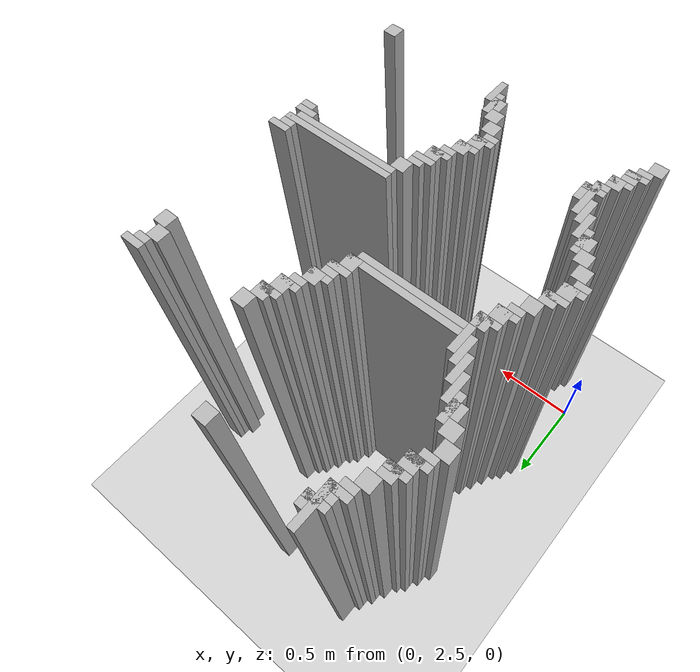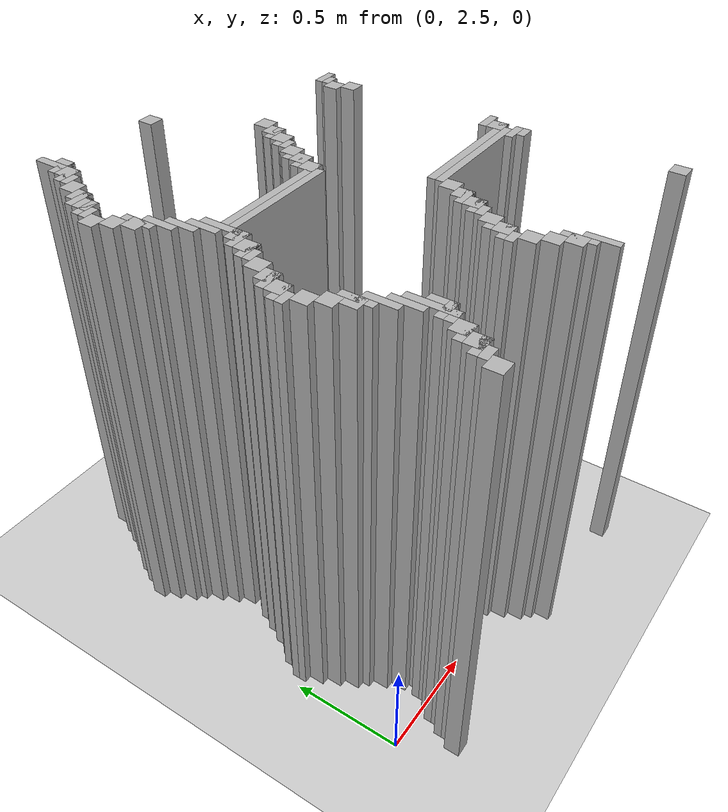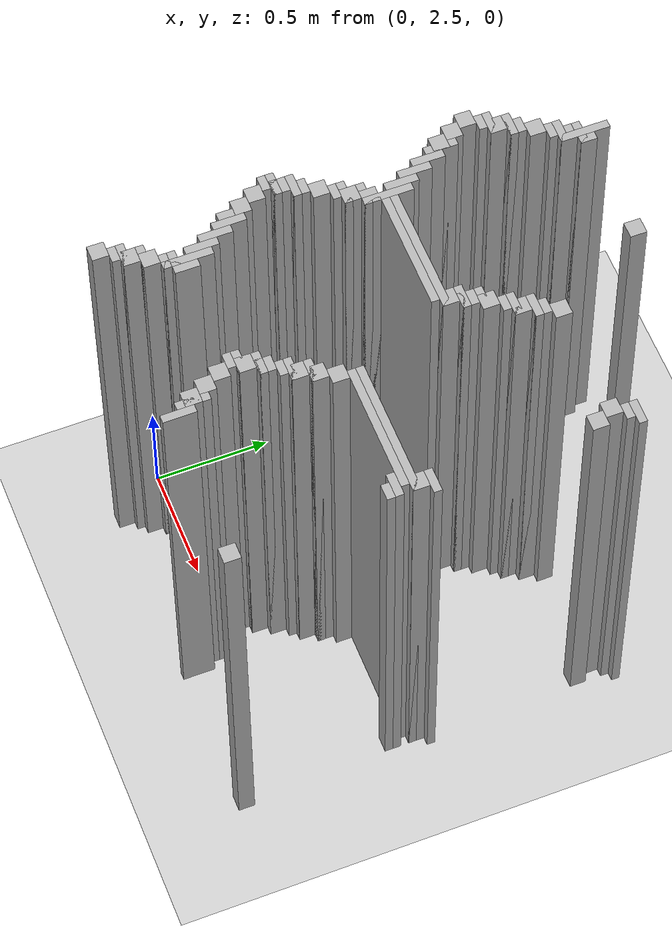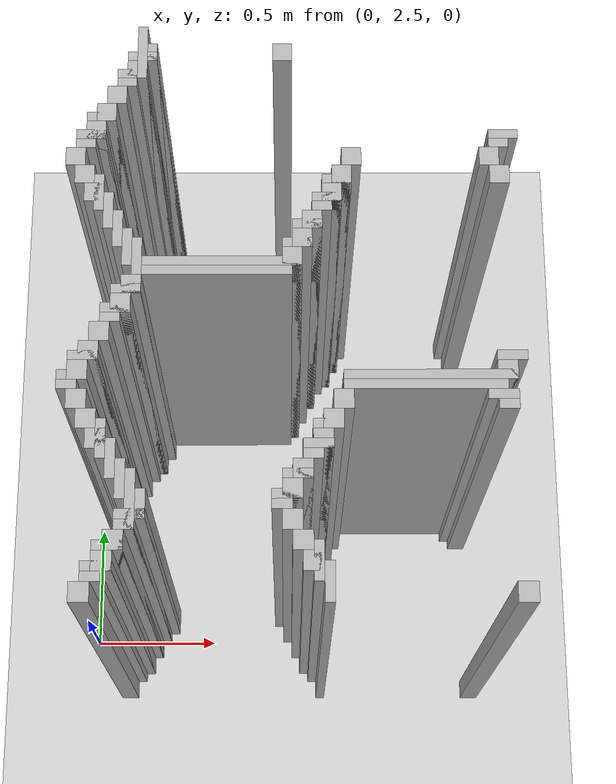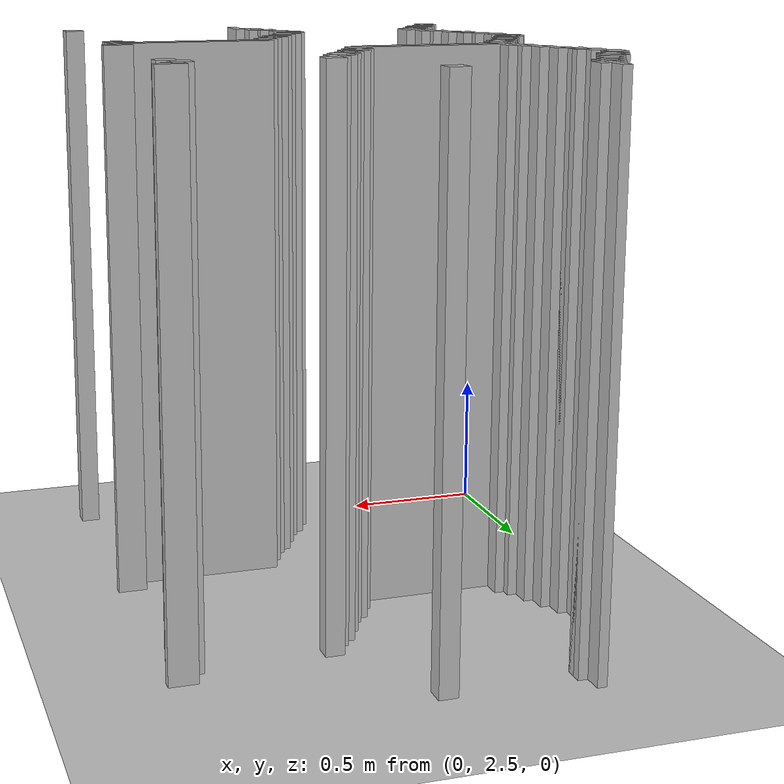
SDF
<sdf version="1.6">
 <world name="slam_world">
  <model name="ground_plane">
   <static>true</static>
   <link name="link">
    <collision name="collision">
     <geometry><plane><normal>0 0 1</normal><size>100 100</size></plane></geometry>
    </collision>
    <visual name="visual">
     <geometry><plane><normal>0 0 1</normal><size>100 100</size></plane></geometry>
     <material>
      <ambient>0.8 0.8 0.8 1</ambient>
      <diffuse>0.8 0.8 0.8 1</diffuse>
      <specular>0.8 0.8 0.8 1</specular>
     </material>
    </visual>
   </link>
  </model>
  <model name="wall_4394">
   <static>true</static>
   <pose>0.29582366589327147 4.280742459396752 1.0 0 0 0</pose>
   <link name="link">
    <collision name="collision">
     <geometry><box><size>0.03480278422273782 0.2088167053364269 2.0</size></box></geometry>
    </collision>
    <visual name="visual">
     <geometry><box><size>0.03480278422273782 0.2088167053364269 2.0</size></box></geometry>
     <material><ambient>0.5 0.5 0.5 1</ambient><diffuse>0.7 0.7 0.7 1</diffuse></material>
    </visual>
   </link>
  </model>
  <model name="wall_4413">
   <static>true</static>
   <pose>0.3306264501160093 4.280742459396752 1.0 0 0 0</pose>
   <link name="link">
    <collision name="collision">
     <geometry><box><size>0.03480278422273782 0.06960556844547564 2.0</size></box></geometry>
    </collision>
    <visual name="visual">
     <geometry><box><size>0.03480278422273782 0.06960556844547564 2.0</size></box></geometry>
     <material><ambient>0.5 0.5 0.5 1</ambient><diffuse>0.7 0.7 0.7 1</diffuse></material>
    </visual>
   </link>
  </model>
  <model name="wall_4414">
   <static>true</static>
   <pose>0.8004640371229698 4.280742459396752 1.0 0 0 0</pose>
   <link name="link">
    <collision name="collision">
     <geometry><box><size>0.06960556844547564 0.06960556844547564 2.0</size></box></geometry>
    </collision>
    <visual name="visual">
     <geometry><box><size>0.06960556844547564 0.06960556844547564 2.0</size></box></geometry>
     <material><ambient>0.5 0.5 0.5 1</ambient><diffuse>0.7 0.7 0.7 1</diffuse></material>
    </visual>
   </link>
  </model>
  <model name="wall_4428">
   <static>true</static>
   <pose>0.29582366589327147 4.263341067285383 1.0 0 0 0</pose>
   <link name="link">
    <collision name="collision">
     <geometry><box><size>0.10440835266821345 0.03480278422273782 2.0</size></box></geometry>
    </collision>
    <visual name="visual">
     <geometry><box><size>0.10440835266821345 0.03480278422273782 2.0</size></box></geometry>
     <material><ambient>0.5 0.5 0.5 1</ambient><diffuse>0.7 0.7 0.7 1</diffuse></material>
    </visual>
   </link>
  </model>
  <model name="wall_4441">
   <static>true</static>
   <pose>0.27842227378190254 4.211136890951276 1.0 0 0 0</pose>
   <link name="link">
    <collision name="collision">
     <geometry><box><size>0.06960556844547564 0.06960556844547564 2.0</size></box></geometry>
    </collision>
    <visual name="visual">
     <geometry><box><size>0.06960556844547564 0.06960556844547564 2.0</size></box></geometry>
     <material><ambient>0.5 0.5 0.5 1</ambient><diffuse>0.7 0.7 0.7 1</diffuse></material>
    </visual>
   </link>
  </model>
  <model name="wall_4456">
   <static>true</static>
   <pose>0.2610208816705336 4.193735498839907 1.0 0 0 0</pose>
   <link name="link">
    <collision name="collision">
     <geometry><box><size>0.10440835266821345 0.03480278422273782 2.0</size></box></geometry>
    </collision>
    <visual name="visual">
     <geometry><box><size>0.10440835266821345 0.03480278422273782 2.0</size></box></geometry>
     <material><ambient>0.5 0.5 0.5 1</ambient><diffuse>0.7 0.7 0.7 1</diffuse></material>
    </visual>
   </link>
  </model>
  <model name="wall_4471">
   <static>true</static>
   <pose>0.24361948955916474 4.158932714617169 1.0 0 0 0</pose>
   <link name="link">
    <collision name="collision">
     <geometry><box><size>0.06960556844547564 0.03480278422273782 2.0</size></box></geometry>
    </collision>
    <visual name="visual">
     <geometry><box><size>0.06960556844547564 0.03480278422273782 2.0</size></box></geometry>
     <material><ambient>0.5 0.5 0.5 1</ambient><diffuse>0.7 0.7 0.7 1</diffuse></material>
    </visual>
   </link>
  </model>
  <model name="wall_4481">
   <static>true</static>
   <pose>0.2088167053364269 4.106728538283062 1.0 0 0 0</pose>
   <link name="link">
    <collision name="collision">
     <geometry><box><size>0.06960556844547564 0.06960556844547564 2.0</size></box></geometry>
    </collision>
    <visual name="visual">
     <geometry><box><size>0.06960556844547564 0.06960556844547564 2.0</size></box></geometry>
     <material><ambient>0.5 0.5 0.5 1</ambient><diffuse>0.7 0.7 0.7 1</diffuse></material>
    </visual>
   </link>
  </model>
  <model name="wall_4496">
   <static>true</static>
   <pose>0.17401392111368907 4.037122969837587 1.0 0 0 0</pose>
   <link name="link">
    <collision name="collision">
     <geometry><box><size>0.06960556844547564 0.06960556844547564 2.0</size></box></geometry>
    </collision>
    <visual name="visual">
     <geometry><box><size>0.06960556844547564 0.06960556844547564 2.0</size></box></geometry>
     <material><ambient>0.5 0.5 0.5 1</ambient><diffuse>0.7 0.7 0.7 1</diffuse></material>
    </visual>
   </link>
  </model>
  <model name="wall_4511">
   <static>true</static>
   <pose>0.15661252900232017 4.019721577726218 1.0 0 0 0</pose>
   <link name="link">
    <collision name="collision">
     <geometry><box><size>0.10440835266821345 0.03480278422273782 2.0</size></box></geometry>
    </collision>
    <visual name="visual">
     <geometry><box><size>0.10440835266821345 0.03480278422273782 2.0</size></box></geometry>
     <material><ambient>0.5 0.5 0.5 1</ambient><diffuse>0.7 0.7 0.7 1</diffuse></material>
    </visual>
   </link>
  </model>
  <model name="wall_4526">
   <static>true</static>
   <pose>0.13921113689095127 3.967517401392111 1.0 0 0 0</pose>
   <link name="link">
    <collision name="collision">
     <geometry><box><size>0.06960556844547564 0.06960556844547564 2.0</size></box></geometry>
    </collision>
    <visual name="visual">
     <geometry><box><size>0.06960556844547564 0.06960556844547564 2.0</size></box></geometry>
     <material><ambient>0.5 0.5 0.5 1</ambient><diffuse>0.7 0.7 0.7 1</diffuse></material>
    </visual>
   </link>
  </model>
  <model name="wall_4534">
   <static>true</static>
   <pose>0.12180974477958237 3.9501160092807424 1.0 0 0 0</pose>
   <link name="link">
    <collision name="collision">
     <geometry><box><size>0.10440835266821345 0.03480278422273782 2.0</size></box></geometry>
    </collision>
    <visual name="visual">
     <geometry><box><size>0.10440835266821345 0.03480278422273782 2.0</size></box></geometry>
     <material><ambient>0.5 0.5 0.5 1</ambient><diffuse>0.7 0.7 0.7 1</diffuse></material>
    </visual>
   </link>
  </model>
  <model name="wall_4535">
   <static>true</static>
   <pose>1.5835266821345706 3.9501160092807424 1.0 0 0 0</pose>
   <link name="link">
    <collision name="collision">
     <geometry><box><size>0.10440835266821345 0.03480278422273782 2.0</size></box></geometry>
    </collision>
    <visual name="visual">
     <geometry><box><size>0.10440835266821345 0.03480278422273782 2.0</size></box></geometry>
     <material><ambient>0.5 0.5 0.5 1</ambient><diffuse>0.7 0.7 0.7 1</diffuse></material>
    </visual>
   </link>
  </model>
  <model name="wall_4549">
   <static>true</static>
   <pose>0.10440835266821345 3.9153132250580045 1.0 0 0 0</pose>
   <link name="link">
    <collision name="collision">
     <geometry><box><size>0.06960556844547564 0.03480278422273782 2.0</size></box></geometry>
    </collision>
    <visual name="visual">
     <geometry><box><size>0.06960556844547564 0.03480278422273782 2.0</size></box></geometry>
     <material><ambient>0.5 0.5 0.5 1</ambient><diffuse>0.7 0.7 0.7 1</diffuse></material>
    </visual>
   </link>
  </model>
  <model name="wall_4550">
   <static>true</static>
   <pose>1.5661252900232019 3.9153132250580045 1.0 0 0 0</pose>
   <link name="link">
    <collision name="collision">
     <geometry><box><size>0.06960556844547564 0.03480278422273782 2.0</size></box></geometry>
    </collision>
    <visual name="visual">
     <geometry><box><size>0.06960556844547564 0.03480278422273782 2.0</size></box></geometry>
     <material><ambient>0.5 0.5 0.5 1</ambient><diffuse>0.7 0.7 0.7 1</diffuse></material>
    </visual>
   </link>
  </model>
  <model name="wall_4557">
   <static>true</static>
   <pose>0.06960556844547564 3.863109048723898 1.0 0 0 0</pose>
   <link name="link">
    <collision name="collision">
     <geometry><box><size>0.06960556844547564 0.06960556844547564 2.0</size></box></geometry>
    </collision>
    <visual name="visual">
     <geometry><box><size>0.06960556844547564 0.06960556844547564 2.0</size></box></geometry>
     <material><ambient>0.5 0.5 0.5 1</ambient><diffuse>0.7 0.7 0.7 1</diffuse></material>
    </visual>
   </link>
  </model>
  <model name="wall_4558">
   <static>true</static>
   <pose>1.0440835266821344 3.863109048723898 1.0 0 0 0</pose>
   <link name="link">
    <collision name="collision">
     <geometry><box><size>0.06960556844547564 0.06960556844547564 2.0</size></box></geometry>
    </collision>
    <visual name="visual">
     <geometry><box><size>0.06960556844547564 0.06960556844547564 2.0</size></box></geometry>
     <material><ambient>0.5 0.5 0.5 1</ambient><diffuse>0.7 0.7 0.7 1</diffuse></material>
    </visual>
   </link>
  </model>
  <model name="wall_4559">
   <static>true</static>
   <pose>1.531322505800464 3.863109048723898 1.0 0 0 0</pose>
   <link name="link">
    <collision name="collision">
     <geometry><box><size>0.06960556844547564 0.06960556844547564 2.0</size></box></geometry>
    </collision>
    <visual name="visual">
     <geometry><box><size>0.06960556844547564 0.06960556844547564 2.0</size></box></geometry>
     <material><ambient>0.5 0.5 0.5 1</ambient><diffuse>0.7 0.7 0.7 1</diffuse></material>
    </visual>
   </link>
  </model>
  <model name="wall_4571">
   <static>true</static>
   <pose>0.10440835266821345 3.793503480278422 1.0 0 0 0</pose>
   <link name="link">
    <collision name="collision">
     <geometry><box><size>0.06960556844547564 0.06960556844547564 2.0</size></box></geometry>
    </collision>
    <visual name="visual">
     <geometry><box><size>0.06960556844547564 0.06960556844547564 2.0</size></box></geometry>
     <material><ambient>0.5 0.5 0.5 1</ambient><diffuse>0.7 0.7 0.7 1</diffuse></material>
    </visual>
   </link>
  </model>
  <model name="wall_4572">
   <static>true</static>
   <pose>1.0092807424593968 3.793503480278422 1.0 0 0 0</pose>
   <link name="link">
    <collision name="collision">
     <geometry><box><size>0.06960556844547564 0.06960556844547564 2.0</size></box></geometry>
    </collision>
    <visual name="visual">
     <geometry><box><size>0.06960556844547564 0.06960556844547564 2.0</size></box></geometry>
     <material><ambient>0.5 0.5 0.5 1</ambient><diffuse>0.7 0.7 0.7 1</diffuse></material>
    </visual>
   </link>
  </model>
  <model name="wall_4573">
   <static>true</static>
   <pose>1.5661252900232019 3.793503480278422 1.0 0 0 0</pose>
   <link name="link">
    <collision name="collision">
     <geometry><box><size>0.06960556844547564 0.06960556844547564 2.0</size></box></geometry>
    </collision>
    <visual name="visual">
     <geometry><box><size>0.06960556844547564 0.06960556844547564 2.0</size></box></geometry>
     <material><ambient>0.5 0.5 0.5 1</ambient><diffuse>0.7 0.7 0.7 1</diffuse></material>
    </visual>
   </link>
  </model>
  <model name="wall_4585">
   <static>true</static>
   <pose>0.15661252900232017 3.7238979118329465 1.0 0 0 0</pose>
   <link name="link">
    <collision name="collision">
     <geometry><box><size>0.03480278422273782 0.13921113689095127 2.0</size></box></geometry>
    </collision>
    <visual name="visual">
     <geometry><box><size>0.03480278422273782 0.13921113689095127 2.0</size></box></geometry>
     <material><ambient>0.5 0.5 0.5 1</ambient><diffuse>0.7 0.7 0.7 1</diffuse></material>
    </visual>
   </link>
  </model>
  <model name="wall_4586">
   <static>true</static>
   <pose>0.9918793503480278 3.776102088167053 1.0 0 0 0</pose>
   <link name="link">
    <collision name="collision">
     <geometry><box><size>0.10440835266821345 0.03480278422273782 2.0</size></box></geometry>
    </collision>
    <visual name="visual">
     <geometry><box><size>0.10440835266821345 0.03480278422273782 2.0</size></box></geometry>
     <material><ambient>0.5 0.5 0.5 1</ambient><diffuse>0.7 0.7 0.7 1</diffuse></material>
    </visual>
   </link>
  </model>
  <model name="wall_4599">
   <static>true</static>
   <pose>0.13921113689095127 3.7238979118329465 1.0 0 0 0</pose>
   <link name="link">
    <collision name="collision">
     <geometry><box><size>0.06960556844547564 0.06960556844547564 2.0</size></box></geometry>
    </collision>
    <visual name="visual">
     <geometry><box><size>0.06960556844547564 0.06960556844547564 2.0</size></box></geometry>
     <material><ambient>0.5 0.5 0.5 1</ambient><diffuse>0.7 0.7 0.7 1</diffuse></material>
    </visual>
   </link>
  </model>
  <model name="wall_4600">
   <static>true</static>
   <pose>0.974477958236659 3.7238979118329465 1.0 0 0 0</pose>
   <link name="link">
    <collision name="collision">
     <geometry><box><size>0.06960556844547564 0.06960556844547564 2.0</size></box></geometry>
    </collision>
    <visual name="visual">
     <geometry><box><size>0.06960556844547564 0.06960556844547564 2.0</size></box></geometry>
     <material><ambient>0.5 0.5 0.5 1</ambient><diffuse>0.7 0.7 0.7 1</diffuse></material>
    </visual>
   </link>
  </model>
  <model name="wall_4613">
   <static>true</static>
   <pose>0.191415313225058 3.6542923433874708 1.0 0 0 0</pose>
   <link name="link">
    <collision name="collision">
     <geometry><box><size>0.03480278422273782 0.13921113689095127 2.0</size></box></geometry>
    </collision>
    <visual name="visual">
     <geometry><box><size>0.03480278422273782 0.13921113689095127 2.0</size></box></geometry>
     <material><ambient>0.5 0.5 0.5 1</ambient><diffuse>0.7 0.7 0.7 1</diffuse></material>
    </visual>
   </link>
  </model>
  <model name="wall_4614">
   <static>true</static>
   <pose>0.95707656612529 3.706496519721578 1.0 0 0 0</pose>
   <link name="link">
    <collision name="collision">
     <geometry><box><size>0.10440835266821345 0.03480278422273782 2.0</size></box></geometry>
    </collision>
    <visual name="visual">
     <geometry><box><size>0.10440835266821345 0.03480278422273782 2.0</size></box></geometry>
     <material><ambient>0.5 0.5 0.5 1</ambient><diffuse>0.7 0.7 0.7 1</diffuse></material>
    </visual>
   </link>
  </model>
  <model name="wall_4627">
   <static>true</static>
   <pose>0.9396751740139211 3.67169373549884 1.0 0 0 0</pose>
   <link name="link">
    <collision name="collision">
     <geometry><box><size>0.06960556844547564 0.03480278422273782 2.0</size></box></geometry>
    </collision>
    <visual name="visual">
     <geometry><box><size>0.06960556844547564 0.03480278422273782 2.0</size></box></geometry>
     <material><ambient>0.5 0.5 0.5 1</ambient><diffuse>0.7 0.7 0.7 1</diffuse></material>
    </visual>
   </link>
  </model>
  <model name="wall_4636">
   <static>true</static>
   <pose>0.2262180974477958 3.584686774941995 1.0 0 0 0</pose>
   <link name="link">
    <collision name="collision">
     <geometry><box><size>0.03480278422273782 0.13921113689095127 2.0</size></box></geometry>
    </collision>
    <visual name="visual">
     <geometry><box><size>0.03480278422273782 0.13921113689095127 2.0</size></box></geometry>
     <material><ambient>0.5 0.5 0.5 1</ambient><diffuse>0.7 0.7 0.7 1</diffuse></material>
    </visual>
   </link>
  </model>
  <model name="wall_4637">
   <static>true</static>
   <pose>0.9048723897911832 3.619489559164733 1.0 0 0 0</pose>
   <link name="link">
    <collision name="collision">
     <geometry><box><size>0.06960556844547564 0.06960556844547564 2.0</size></box></geometry>
    </collision>
    <visual name="visual">
     <geometry><box><size>0.06960556844547564 0.06960556844547564 2.0</size></box></geometry>
     <material><ambient>0.5 0.5 0.5 1</ambient><diffuse>0.7 0.7 0.7 1</diffuse></material>
    </visual>
   </link>
  </model>
  <model name="wall_4650">
   <static>true</static>
   <pose>0.8874709976798143 3.602088167053364 1.0 0 0 0</pose>
   <link name="link">
    <collision name="collision">
     <geometry><box><size>0.10440835266821345 0.03480278422273782 2.0</size></box></geometry>
    </collision>
    <visual name="visual">
     <geometry><box><size>0.10440835266821345 0.03480278422273782 2.0</size></box></geometry>
     <material><ambient>0.5 0.5 0.5 1</ambient><diffuse>0.7 0.7 0.7 1</diffuse></material>
    </visual>
   </link>
  </model>
  <model name="wall_4659">
   <static>true</static>
   <pose>0.2610208816705336 3.51508120649652 1.0 0 0 0</pose>
   <link name="link">
    <collision name="collision">
     <geometry><box><size>0.03480278422273782 0.13921113689095127 2.0</size></box></geometry>
    </collision>
    <visual name="visual">
     <geometry><box><size>0.03480278422273782 0.13921113689095127 2.0</size></box></geometry>
     <material><ambient>0.5 0.5 0.5 1</ambient><diffuse>0.7 0.7 0.7 1</diffuse></material>
    </visual>
   </link>
  </model>
  <model name="wall_4660">
   <static>true</static>
   <pose>0.8700696055684455 3.549883990719257 1.0 0 0 0</pose>
   <link name="link">
    <collision name="collision">
     <geometry><box><size>0.06960556844547564 0.06960556844547564 2.0</size></box></geometry>
    </collision>
    <visual name="visual">
     <geometry><box><size>0.06960556844547564 0.06960556844547564 2.0</size></box></geometry>
     <material><ambient>0.5 0.5 0.5 1</ambient><diffuse>0.7 0.7 0.7 1</diffuse></material>
    </visual>
   </link>
  </model>
  <model name="wall_4673">
   <static>true</static>
   <pose>0.29582366589327147 3.445475638051044 1.0 0 0 0</pose>
   <link name="link">
    <collision name="collision">
     <geometry><box><size>0.03480278422273782 0.2088167053364269 2.0</size></box></geometry>
    </collision>
    <visual name="visual">
     <geometry><box><size>0.03480278422273782 0.2088167053364269 2.0</size></box></geometry>
     <material><ambient>0.5 0.5 0.5 1</ambient><diffuse>0.7 0.7 0.7 1</diffuse></material>
    </visual>
   </link>
  </model>
  <model name="wall_4674">
   <static>true</static>
   <pose>0.8526682134570766 3.5324825986078885 1.0 0 0 0</pose>
   <link name="link">
    <collision name="collision">
     <geometry><box><size>0.10440835266821345 0.03480278422273782 2.0</size></box></geometry>
    </collision>
    <visual name="visual">
     <geometry><box><size>0.10440835266821345 0.03480278422273782 2.0</size></box></geometry>
     <material><ambient>0.5 0.5 0.5 1</ambient><diffuse>0.7 0.7 0.7 1</diffuse></material>
    </visual>
   </link>
  </model>
  <model name="wall_4687">
   <static>true</static>
   <pose>0.8352668213457076 3.480278422273782 1.0 0 0 0</pose>
   <link name="link">
    <collision name="collision">
     <geometry><box><size>0.06960556844547564 0.06960556844547564 2.0</size></box></geometry>
    </collision>
    <visual name="visual">
     <geometry><box><size>0.06960556844547564 0.06960556844547564 2.0</size></box></geometry>
     <material><ambient>0.5 0.5 0.5 1</ambient><diffuse>0.7 0.7 0.7 1</diffuse></material>
    </visual>
   </link>
  </model>
  <model name="wall_4696">
   <static>true</static>
   <pose>0.5916473317865429 3.4628770301624128 1.0 0 0 0</pose>
   <link name="link">
    <collision name="collision">
     <geometry><box><size>0.5568445475638051 0.03480278422273782 2.0</size></box></geometry>
    </collision>
    <visual name="visual">
     <geometry><box><size>0.5568445475638051 0.03480278422273782 2.0</size></box></geometry>
     <material><ambient>0.5 0.5 0.5 1</ambient><diffuse>0.7 0.7 0.7 1</diffuse></material>
    </visual>
   </link>
  </model>
  <model name="wall_4710">
   <static>true</static>
   <pose>0.574245939675174 3.428074245939675 1.0 0 0 0</pose>
   <link name="link">
    <collision name="collision">
     <geometry><box><size>0.5220417633410672 0.03480278422273782 2.0</size></box></geometry>
    </collision>
    <visual name="visual">
     <geometry><box><size>0.5220417633410672 0.03480278422273782 2.0</size></box></geometry>
     <material><ambient>0.5 0.5 0.5 1</ambient><diffuse>0.7 0.7 0.7 1</diffuse></material>
    </visual>
   </link>
  </model>
  <model name="wall_4719">
   <static>true</static>
   <pose>0.27842227378190254 3.3758700696055683 1.0 0 0 0</pose>
   <link name="link">
    <collision name="collision">
     <geometry><box><size>0.06960556844547564 0.06960556844547564 2.0</size></box></geometry>
    </collision>
    <visual name="visual">
     <geometry><box><size>0.06960556844547564 0.06960556844547564 2.0</size></box></geometry>
     <material><ambient>0.5 0.5 0.5 1</ambient><diffuse>0.7 0.7 0.7 1</diffuse></material>
    </visual>
   </link>
  </model>
  <model name="wall_4733">
   <static>true</static>
   <pose>0.2610208816705336 3.358468677494199 1.0 0 0 0</pose>
   <link name="link">
    <collision name="collision">
     <geometry><box><size>0.10440835266821345 0.03480278422273782 2.0</size></box></geometry>
    </collision>
    <visual name="visual">
     <geometry><box><size>0.10440835266821345 0.03480278422273782 2.0</size></box></geometry>
     <material><ambient>0.5 0.5 0.5 1</ambient><diffuse>0.7 0.7 0.7 1</diffuse></material>
    </visual>
   </link>
  </model>
  <model name="wall_4747">
   <static>true</static>
   <pose>0.24361948955916474 3.3062645011600926 1.0 0 0 0</pose>
   <link name="link">
    <collision name="collision">
     <geometry><box><size>0.06960556844547564 0.06960556844547564 2.0</size></box></geometry>
    </collision>
    <visual name="visual">
     <geometry><box><size>0.06960556844547564 0.06960556844547564 2.0</size></box></geometry>
     <material><ambient>0.5 0.5 0.5 1</ambient><diffuse>0.7 0.7 0.7 1</diffuse></material>
    </visual>
   </link>
  </model>
  <model name="wall_4761">
   <static>true</static>
   <pose>0.2262180974477958 3.288863109048724 1.0 0 0 0</pose>
   <link name="link">
    <collision name="collision">
     <geometry><box><size>0.10440835266821345 0.03480278422273782 2.0</size></box></geometry>
    </collision>
    <visual name="visual">
     <geometry><box><size>0.10440835266821345 0.03480278422273782 2.0</size></box></geometry>
     <material><ambient>0.5 0.5 0.5 1</ambient><diffuse>0.7 0.7 0.7 1</diffuse></material>
    </visual>
   </link>
  </model>
  <model name="wall_4775">
   <static>true</static>
   <pose>0.2088167053364269 3.254060324825986 1.0 0 0 0</pose>
   <link name="link">
    <collision name="collision">
     <geometry><box><size>0.06960556844547564 0.03480278422273782 2.0</size></box></geometry>
    </collision>
    <visual name="visual">
     <geometry><box><size>0.06960556844547564 0.03480278422273782 2.0</size></box></geometry>
     <material><ambient>0.5 0.5 0.5 1</ambient><diffuse>0.7 0.7 0.7 1</diffuse></material>
    </visual>
   </link>
  </model>
  <model name="wall_4782">
   <static>true</static>
   <pose>0.17401392111368907 3.201856148491879 1.0 0 0 0</pose>
   <link name="link">
    <collision name="collision">
     <geometry><box><size>0.06960556844547564 0.06960556844547564 2.0</size></box></geometry>
    </collision>
    <visual name="visual">
     <geometry><box><size>0.06960556844547564 0.06960556844547564 2.0</size></box></geometry>
     <material><ambient>0.5 0.5 0.5 1</ambient><diffuse>0.7 0.7 0.7 1</diffuse></material>
    </visual>
   </link>
  </model>
  <model name="wall_4796">
   <static>true</static>
   <pose>0.13921113689095127 3.1322505800464038 1.0 0 0 0</pose>
   <link name="link">
    <collision name="collision">
     <geometry><box><size>0.06960556844547564 0.06960556844547564 2.0</size></box></geometry>
    </collision>
    <visual name="visual">
     <geometry><box><size>0.06960556844547564 0.06960556844547564 2.0</size></box></geometry>
     <material><ambient>0.5 0.5 0.5 1</ambient><diffuse>0.7 0.7 0.7 1</diffuse></material>
    </visual>
   </link>
  </model>
  <model name="wall_4810">
   <static>true</static>
   <pose>0.12180974477958237 3.1148491879350346 1.0 0 0 0</pose>
   <link name="link">
    <collision name="collision">
     <geometry><box><size>0.10440835266821345 0.03480278422273782 2.0</size></box></geometry>
    </collision>
    <visual name="visual">
     <geometry><box><size>0.10440835266821345 0.03480278422273782 2.0</size></box></geometry>
     <material><ambient>0.5 0.5 0.5 1</ambient><diffuse>0.7 0.7 0.7 1</diffuse></material>
    </visual>
   </link>
  </model>
  <model name="wall_4811">
   <static>true</static>
   <pose>1.5835266821345706 3.1148491879350346 1.0 0 0 0</pose>
   <link name="link">
    <collision name="collision">
     <geometry><box><size>0.10440835266821345 0.03480278422273782 2.0</size></box></geometry>
    </collision>
    <visual name="visual">
     <geometry><box><size>0.10440835266821345 0.03480278422273782 2.0</size></box></geometry>
     <material><ambient>0.5 0.5 0.5 1</ambient><diffuse>0.7 0.7 0.7 1</diffuse></material>
    </visual>
   </link>
  </model>
  <model name="wall_4824">
   <static>true</static>
   <pose>0.10440835266821345 3.062645011600928 1.0 0 0 0</pose>
   <link name="link">
    <collision name="collision">
     <geometry><box><size>0.06960556844547564 0.06960556844547564 2.0</size></box></geometry>
    </collision>
    <visual name="visual">
     <geometry><box><size>0.06960556844547564 0.06960556844547564 2.0</size></box></geometry>
     <material><ambient>0.5 0.5 0.5 1</ambient><diffuse>0.7 0.7 0.7 1</diffuse></material>
    </visual>
   </link>
  </model>
  <model name="wall_4825">
   <static>true</static>
   <pose>1.5661252900232019 3.062645011600928 1.0 0 0 0</pose>
   <link name="link">
    <collision name="collision">
     <geometry><box><size>0.06960556844547564 0.06960556844547564 2.0</size></box></geometry>
    </collision>
    <visual name="visual">
     <geometry><box><size>0.06960556844547564 0.06960556844547564 2.0</size></box></geometry>
     <material><ambient>0.5 0.5 0.5 1</ambient><diffuse>0.7 0.7 0.7 1</diffuse></material>
    </visual>
   </link>
  </model>
  <model name="wall_4831">
   <static>true</static>
   <pose>0.08700696055684454 3.045243619489559 1.0 0 0 0</pose>
   <link name="link">
    <collision name="collision">
     <geometry><box><size>0.10440835266821345 0.03480278422273782 2.0</size></box></geometry>
    </collision>
    <visual name="visual">
     <geometry><box><size>0.10440835266821345 0.03480278422273782 2.0</size></box></geometry>
     <material><ambient>0.5 0.5 0.5 1</ambient><diffuse>0.7 0.7 0.7 1</diffuse></material>
    </visual>
   </link>
  </model>
  <model name="wall_4832">
   <static>true</static>
   <pose>1.3051044083526682 3.045243619489559 1.0 0 0 0</pose>
   <link name="link">
    <collision name="collision">
     <geometry><box><size>0.5916473317865429 0.03480278422273782 2.0</size></box></geometry>
    </collision>
    <visual name="visual">
     <geometry><box><size>0.5916473317865429 0.03480278422273782 2.0</size></box></geometry>
     <material><ambient>0.5 0.5 0.5 1</ambient><diffuse>0.7 0.7 0.7 1</diffuse></material>
    </visual>
   </link>
  </model>
  <model name="wall_4847">
   <static>true</static>
   <pose>0.06960556844547564 3.010440835266821 1.0 0 0 0</pose>
   <link name="link">
    <collision name="collision">
     <geometry><box><size>0.06960556844547564 0.03480278422273782 2.0</size></box></geometry>
    </collision>
    <visual name="visual">
     <geometry><box><size>0.06960556844547564 0.03480278422273782 2.0</size></box></geometry>
     <material><ambient>0.5 0.5 0.5 1</ambient><diffuse>0.7 0.7 0.7 1</diffuse></material>
    </visual>
   </link>
  </model>
  <model name="wall_4848">
   <static>true</static>
   <pose>1.2877030162412992 3.010440835266821 1.0 0 0 0</pose>
   <link name="link">
    <collision name="collision">
     <geometry><box><size>0.5568445475638051 0.03480278422273782 2.0</size></box></geometry>
    </collision>
    <visual name="visual">
     <geometry><box><size>0.5568445475638051 0.03480278422273782 2.0</size></box></geometry>
     <material><ambient>0.5 0.5 0.5 1</ambient><diffuse>0.7 0.7 0.7 1</diffuse></material>
    </visual>
   </link>
  </model>
  <model name="wall_4854">
   <static>true</static>
   <pose>0.10440835266821345 2.9582366589327145 1.0 0 0 0</pose>
   <link name="link">
    <collision name="collision">
     <geometry><box><size>0.06960556844547564 0.06960556844547564 2.0</size></box></geometry>
    </collision>
    <visual name="visual">
     <geometry><box><size>0.06960556844547564 0.06960556844547564 2.0</size></box></geometry>
     <material><ambient>0.5 0.5 0.5 1</ambient><diffuse>0.7 0.7 0.7 1</diffuse></material>
    </visual>
   </link>
  </model>
  <model name="wall_4855">
   <static>true</static>
   <pose>1.0092807424593968 2.9582366589327145 1.0 0 0 0</pose>
   <link name="link">
    <collision name="collision">
     <geometry><box><size>0.06960556844547564 0.06960556844547564 2.0</size></box></geometry>
    </collision>
    <visual name="visual">
     <geometry><box><size>0.06960556844547564 0.06960556844547564 2.0</size></box></geometry>
     <material><ambient>0.5 0.5 0.5 1</ambient><diffuse>0.7 0.7 0.7 1</diffuse></material>
    </visual>
   </link>
  </model>
  <model name="wall_4856">
   <static>true</static>
   <pose>1.548723897911833 2.975638051044083 1.0 0 0 0</pose>
   <link name="link">
    <collision name="collision">
     <geometry><box><size>0.10440835266821345 0.03480278422273782 2.0</size></box></geometry>
    </collision>
    <visual name="visual">
     <geometry><box><size>0.10440835266821345 0.03480278422273782 2.0</size></box></geometry>
     <material><ambient>0.5 0.5 0.5 1</ambient><diffuse>0.7 0.7 0.7 1</diffuse></material>
    </visual>
   </link>
  </model>
  <model name="wall_4870">
   <static>true</static>
   <pose>1.5661252900232019 2.9408352668213458 1.0 0 0 0</pose>
   <link name="link">
    <collision name="collision">
     <geometry><box><size>0.06960556844547564 0.03480278422273782 2.0</size></box></geometry>
    </collision>
    <visual name="visual">
     <geometry><box><size>0.06960556844547564 0.03480278422273782 2.0</size></box></geometry>
     <material><ambient>0.5 0.5 0.5 1</ambient><diffuse>0.7 0.7 0.7 1</diffuse></material>
    </visual>
   </link>
  </model>
  <model name="wall_4872">
   <static>true</static>
   <pose>0.13921113689095127 2.8886310904872388 1.0 0 0 0</pose>
   <link name="link">
    <collision name="collision">
     <geometry><box><size>0.06960556844547564 0.06960556844547564 2.0</size></box></geometry>
    </collision>
    <visual name="visual">
     <geometry><box><size>0.06960556844547564 0.06960556844547564 2.0</size></box></geometry>
     <material><ambient>0.5 0.5 0.5 1</ambient><diffuse>0.7 0.7 0.7 1</diffuse></material>
    </visual>
   </link>
  </model>
  <model name="wall_4873">
   <static>true</static>
   <pose>0.974477958236659 2.8886310904872388 1.0 0 0 0</pose>
   <link name="link">
    <collision name="collision">
     <geometry><box><size>0.06960556844547564 0.06960556844547564 2.0</size></box></geometry>
    </collision>
    <visual name="visual">
     <geometry><box><size>0.06960556844547564 0.06960556844547564 2.0</size></box></geometry>
     <material><ambient>0.5 0.5 0.5 1</ambient><diffuse>0.7 0.7 0.7 1</diffuse></material>
    </visual>
   </link>
  </model>
  <model name="wall_4888">
   <static>true</static>
   <pose>0.191415313225058 2.819025522041763 1.0 0 0 0</pose>
   <link name="link">
    <collision name="collision">
     <geometry><box><size>0.03480278422273782 0.13921113689095127 2.0</size></box></geometry>
    </collision>
    <visual name="visual">
     <geometry><box><size>0.03480278422273782 0.13921113689095127 2.0</size></box></geometry>
     <material><ambient>0.5 0.5 0.5 1</ambient><diffuse>0.7 0.7 0.7 1</diffuse></material>
    </visual>
   </link>
  </model>
  <model name="wall_4889">
   <static>true</static>
   <pose>0.95707656612529 2.87122969837587 1.0 0 0 0</pose>
   <link name="link">
    <collision name="collision">
     <geometry><box><size>0.10440835266821345 0.03480278422273782 2.0</size></box></geometry>
    </collision>
    <visual name="visual">
     <geometry><box><size>0.10440835266821345 0.03480278422273782 2.0</size></box></geometry>
     <material><ambient>0.5 0.5 0.5 1</ambient><diffuse>0.7 0.7 0.7 1</diffuse></material>
    </visual>
   </link>
  </model>
  <model name="wall_4904">
   <static>true</static>
   <pose>0.17401392111368907 2.819025522041763 1.0 0 0 0</pose>
   <link name="link">
    <collision name="collision">
     <geometry><box><size>0.06960556844547564 0.06960556844547564 2.0</size></box></geometry>
    </collision>
    <visual name="visual">
     <geometry><box><size>0.06960556844547564 0.06960556844547564 2.0</size></box></geometry>
     <material><ambient>0.5 0.5 0.5 1</ambient><diffuse>0.7 0.7 0.7 1</diffuse></material>
    </visual>
   </link>
  </model>
  <model name="wall_4905">
   <static>true</static>
   <pose>0.9396751740139211 2.819025522041763 1.0 0 0 0</pose>
   <link name="link">
    <collision name="collision">
     <geometry><box><size>0.06960556844547564 0.06960556844547564 2.0</size></box></geometry>
    </collision>
    <visual name="visual">
     <geometry><box><size>0.06960556844547564 0.06960556844547564 2.0</size></box></geometry>
     <material><ambient>0.5 0.5 0.5 1</ambient><diffuse>0.7 0.7 0.7 1</diffuse></material>
    </visual>
   </link>
  </model>
  <model name="wall_4920">
   <static>true</static>
   <pose>0.2262180974477958 2.7494199535962878 1.0 0 0 0</pose>
   <link name="link">
    <collision name="collision">
     <geometry><box><size>0.03480278422273782 0.13921113689095127 2.0</size></box></geometry>
    </collision>
    <visual name="visual">
     <geometry><box><size>0.03480278422273782 0.13921113689095127 2.0</size></box></geometry>
     <material><ambient>0.5 0.5 0.5 1</ambient><diffuse>0.7 0.7 0.7 1</diffuse></material>
    </visual>
   </link>
  </model>
  <model name="wall_4921">
   <static>true</static>
   <pose>0.9222737819025522 2.8016241299303943 1.0 0 0 0</pose>
   <link name="link">
    <collision name="collision">
     <geometry><box><size>0.10440835266821345 0.03480278422273782 2.0</size></box></geometry>
    </collision>
    <visual name="visual">
     <geometry><box><size>0.10440835266821345 0.03480278422273782 2.0</size></box></geometry>
     <material><ambient>0.5 0.5 0.5 1</ambient><diffuse>0.7 0.7 0.7 1</diffuse></material>
    </visual>
   </link>
  </model>
  <model name="wall_4936">
   <static>true</static>
   <pose>0.9048723897911832 2.7668213457076565 1.0 0 0 0</pose>
   <link name="link">
    <collision name="collision">
     <geometry><box><size>0.06960556844547564 0.03480278422273782 2.0</size></box></geometry>
    </collision>
    <visual name="visual">
     <geometry><box><size>0.06960556844547564 0.03480278422273782 2.0</size></box></geometry>
     <material><ambient>0.5 0.5 0.5 1</ambient><diffuse>0.7 0.7 0.7 1</diffuse></material>
    </visual>
   </link>
  </model>
  <model name="wall_4943">
   <static>true</static>
   <pose>0.2610208816705336 2.679814385150812 1.0 0 0 0</pose>
   <link name="link">
    <collision name="collision">
     <geometry><box><size>0.03480278422273782 0.13921113689095127 2.0</size></box></geometry>
    </collision>
    <visual name="visual">
     <geometry><box><size>0.03480278422273782 0.13921113689095127 2.0</size></box></geometry>
     <material><ambient>0.5 0.5 0.5 1</ambient><diffuse>0.7 0.7 0.7 1</diffuse></material>
    </visual>
   </link>
  </model>
  <model name="wall_4944">
   <static>true</static>
   <pose>0.8700696055684455 2.71461716937355 1.0 0 0 0</pose>
   <link name="link">
    <collision name="collision">
     <geometry><box><size>0.06960556844547564 0.06960556844547564 2.0</size></box></geometry>
    </collision>
    <visual name="visual">
     <geometry><box><size>0.06960556844547564 0.06960556844547564 2.0</size></box></geometry>
     <material><ambient>0.5 0.5 0.5 1</ambient><diffuse>0.7 0.7 0.7 1</diffuse></material>
    </visual>
   </link>
  </model>
  <model name="wall_4959">
   <static>true</static>
   <pose>0.29582366589327147 2.6102088167053363 1.0 0 0 0</pose>
   <link name="link">
    <collision name="collision">
     <geometry><box><size>0.03480278422273782 0.2088167053364269 2.0</size></box></geometry>
    </collision>
    <visual name="visual">
     <geometry><box><size>0.03480278422273782 0.2088167053364269 2.0</size></box></geometry>
     <material><ambient>0.5 0.5 0.5 1</ambient><diffuse>0.7 0.7 0.7 1</diffuse></material>
    </visual>
   </link>
  </model>
  <model name="wall_4960">
   <static>true</static>
   <pose>0.8526682134570766 2.6972157772621808 1.0 0 0 0</pose>
   <link name="link">
    <collision name="collision">
     <geometry><box><size>0.10440835266821345 0.03480278422273782 2.0</size></box></geometry>
    </collision>
    <visual name="visual">
     <geometry><box><size>0.10440835266821345 0.03480278422273782 2.0</size></box></geometry>
     <material><ambient>0.5 0.5 0.5 1</ambient><diffuse>0.7 0.7 0.7 1</diffuse></material>
    </visual>
   </link>
  </model>
  <model name="wall_4975">
   <static>true</static>
   <pose>0.8352668213457076 2.645011600928074 1.0 0 0 0</pose>
   <link name="link">
    <collision name="collision">
     <geometry><box><size>0.06960556844547564 0.06960556844547564 2.0</size></box></geometry>
    </collision>
    <visual name="visual">
     <geometry><box><size>0.06960556844547564 0.06960556844547564 2.0</size></box></geometry>
     <material><ambient>0.5 0.5 0.5 1</ambient><diffuse>0.7 0.7 0.7 1</diffuse></material>
    </visual>
   </link>
  </model>
  <model name="wall_4982">
   <static>true</static>
   <pose>0.3306264501160093 2.5928074245939676 1.0 0 0 0</pose>
   <link name="link">
    <collision name="collision">
     <geometry><box><size>0.03480278422273782 0.10440835266821345 2.0</size></box></geometry>
    </collision>
    <visual name="visual">
     <geometry><box><size>0.03480278422273782 0.10440835266821345 2.0</size></box></geometry>
     <material><ambient>0.5 0.5 0.5 1</ambient><diffuse>0.7 0.7 0.7 1</diffuse></material>
    </visual>
   </link>
  </model>
  <model name="wall_4983">
   <static>true</static>
   <pose>0.8178654292343387 2.627610208816705 1.0 0 0 0</pose>
   <link name="link">
    <collision name="collision">
     <geometry><box><size>0.10440835266821345 0.03480278422273782 2.0</size></box></geometry>
    </collision>
    <visual name="visual">
     <geometry><box><size>0.10440835266821345 0.03480278422273782 2.0</size></box></geometry>
     <material><ambient>0.5 0.5 0.5 1</ambient><diffuse>0.7 0.7 0.7 1</diffuse></material>
    </visual>
   </link>
  </model>
  <model name="wall_4996">
   <static>true</static>
   <pose>0.8004640371229698 2.5928074245939676 1.0 0 0 0</pose>
   <link name="link">
    <collision name="collision">
     <geometry><box><size>0.06960556844547564 0.03480278422273782 2.0</size></box></geometry>
    </collision>
    <visual name="visual">
     <geometry><box><size>0.06960556844547564 0.03480278422273782 2.0</size></box></geometry>
     <material><ambient>0.5 0.5 0.5 1</ambient><diffuse>0.7 0.7 0.7 1</diffuse></material>
    </visual>
   </link>
  </model>
  <model name="wall_5007">
   <static>true</static>
   <pose>0.29582366589327147 2.5580046403712298 1.0 0 0 0</pose>
   <link name="link">
    <collision name="collision">
     <geometry><box><size>0.10440835266821345 0.03480278422273782 2.0</size></box></geometry>
    </collision>
    <visual name="visual">
     <geometry><box><size>0.10440835266821345 0.03480278422273782 2.0</size></box></geometry>
     <material><ambient>0.5 0.5 0.5 1</ambient><diffuse>0.7 0.7 0.7 1</diffuse></material>
    </visual>
   </link>
  </model>
  <model name="wall_5008">
   <static>true</static>
   <pose>0.8352668213457076 2.5406032482598606 1.0 0 0 0</pose>
   <link name="link">
    <collision name="collision">
     <geometry><box><size>0.06960556844547564 0.06960556844547564 2.0</size></box></geometry>
    </collision>
    <visual name="visual">
     <geometry><box><size>0.06960556844547564 0.06960556844547564 2.0</size></box></geometry>
     <material><ambient>0.5 0.5 0.5 1</ambient><diffuse>0.7 0.7 0.7 1</diffuse></material>
    </visual>
   </link>
  </model>
  <model name="wall_5023">
   <static>true</static>
   <pose>0.27842227378190254 2.523201856148492 1.0 0 0 0</pose>
   <link name="link">
    <collision name="collision">
     <geometry><box><size>0.06960556844547564 0.03480278422273782 2.0</size></box></geometry>
    </collision>
    <visual name="visual">
     <geometry><box><size>0.06960556844547564 0.03480278422273782 2.0</size></box></geometry>
     <material><ambient>0.5 0.5 0.5 1</ambient><diffuse>0.7 0.7 0.7 1</diffuse></material>
    </visual>
   </link>
  </model>
  <model name="wall_5031">
   <static>true</static>
   <pose>0.24361948955916474 2.470997679814385 1.0 0 0 0</pose>
   <link name="link">
    <collision name="collision">
     <geometry><box><size>0.06960556844547564 0.06960556844547564 2.0</size></box></geometry>
    </collision>
    <visual name="visual">
     <geometry><box><size>0.06960556844547564 0.06960556844547564 2.0</size></box></geometry>
     <material><ambient>0.5 0.5 0.5 1</ambient><diffuse>0.7 0.7 0.7 1</diffuse></material>
    </visual>
   </link>
  </model>
  <model name="wall_5032">
   <static>true</static>
   <pose>0.8700696055684455 2.470997679814385 1.0 0 0 0</pose>
   <link name="link">
    <collision name="collision">
     <geometry><box><size>0.06960556844547564 0.06960556844547564 2.0</size></box></geometry>
    </collision>
    <visual name="visual">
     <geometry><box><size>0.06960556844547564 0.06960556844547564 2.0</size></box></geometry>
     <material><ambient>0.5 0.5 0.5 1</ambient><diffuse>0.7 0.7 0.7 1</diffuse></material>
    </visual>
   </link>
  </model>
  <model name="wall_5047">
   <static>true</static>
   <pose>0.2262180974477958 2.453596287703016 1.0 0 0 0</pose>
   <link name="link">
    <collision name="collision">
     <geometry><box><size>0.10440835266821345 0.03480278422273782 2.0</size></box></geometry>
    </collision>
    <visual name="visual">
     <geometry><box><size>0.10440835266821345 0.03480278422273782 2.0</size></box></geometry>
     <material><ambient>0.5 0.5 0.5 1</ambient><diffuse>0.7 0.7 0.7 1</diffuse></material>
    </visual>
   </link>
  </model>
  <model name="wall_5048">
   <static>true</static>
   <pose>0.9222737819025522 2.4013921113689096 1.0 0 0 0</pose>
   <link name="link">
    <collision name="collision">
     <geometry><box><size>0.03480278422273782 0.13921113689095127 2.0</size></box></geometry>
    </collision>
    <visual name="visual">
     <geometry><box><size>0.03480278422273782 0.13921113689095127 2.0</size></box></geometry>
     <material><ambient>0.5 0.5 0.5 1</ambient><diffuse>0.7 0.7 0.7 1</diffuse></material>
    </visual>
   </link>
  </model>
  <model name="wall_5063">
   <static>true</static>
   <pose>0.2088167053364269 2.4013921113689096 1.0 0 0 0</pose>
   <link name="link">
    <collision name="collision">
     <geometry><box><size>0.06960556844547564 0.06960556844547564 2.0</size></box></geometry>
    </collision>
    <visual name="visual">
     <geometry><box><size>0.06960556844547564 0.06960556844547564 2.0</size></box></geometry>
     <material><ambient>0.5 0.5 0.5 1</ambient><diffuse>0.7 0.7 0.7 1</diffuse></material>
    </visual>
   </link>
  </model>
  <model name="wall_5064">
   <static>true</static>
   <pose>0.9048723897911832 2.4013921113689096 1.0 0 0 0</pose>
   <link name="link">
    <collision name="collision">
     <geometry><box><size>0.06960556844547564 0.06960556844547564 2.0</size></box></geometry>
    </collision>
    <visual name="visual">
     <geometry><box><size>0.06960556844547564 0.06960556844547564 2.0</size></box></geometry>
     <material><ambient>0.5 0.5 0.5 1</ambient><diffuse>0.7 0.7 0.7 1</diffuse></material>
    </visual>
   </link>
  </model>
  <model name="wall_5077">
   <static>true</static>
   <pose>0.191415313225058 2.3839907192575405 1.0 0 0 0</pose>
   <link name="link">
    <collision name="collision">
     <geometry><box><size>0.10440835266821345 0.03480278422273782 2.0</size></box></geometry>
    </collision>
    <visual name="visual">
     <geometry><box><size>0.10440835266821345 0.03480278422273782 2.0</size></box></geometry>
     <material><ambient>0.5 0.5 0.5 1</ambient><diffuse>0.7 0.7 0.7 1</diffuse></material>
    </visual>
   </link>
  </model>
  <model name="wall_5078">
   <static>true</static>
   <pose>0.95707656612529 2.331786542923434 1.0 0 0 0</pose>
   <link name="link">
    <collision name="collision">
     <geometry><box><size>0.03480278422273782 0.13921113689095127 2.0</size></box></geometry>
    </collision>
    <visual name="visual">
     <geometry><box><size>0.03480278422273782 0.13921113689095127 2.0</size></box></geometry>
     <material><ambient>0.5 0.5 0.5 1</ambient><diffuse>0.7 0.7 0.7 1</diffuse></material>
    </visual>
   </link>
  </model>
  <model name="wall_5093">
   <static>true</static>
   <pose>0.17401392111368907 2.3491879350348026 1.0 0 0 0</pose>
   <link name="link">
    <collision name="collision">
     <geometry><box><size>0.06960556844547564 0.03480278422273782 2.0</size></box></geometry>
    </collision>
    <visual name="visual">
     <geometry><box><size>0.06960556844547564 0.03480278422273782 2.0</size></box></geometry>
     <material><ambient>0.5 0.5 0.5 1</ambient><diffuse>0.7 0.7 0.7 1</diffuse></material>
    </visual>
   </link>
  </model>
  <model name="wall_5101">
   <static>true</static>
   <pose>0.13921113689095127 2.296983758700696 1.0 0 0 0</pose>
   <link name="link">
    <collision name="collision">
     <geometry><box><size>0.06960556844547564 0.06960556844547564 2.0</size></box></geometry>
    </collision>
    <visual name="visual">
     <geometry><box><size>0.06960556844547564 0.06960556844547564 2.0</size></box></geometry>
     <material><ambient>0.5 0.5 0.5 1</ambient><diffuse>0.7 0.7 0.7 1</diffuse></material>
    </visual>
   </link>
  </model>
  <model name="wall_5103">
   <static>true</static>
   <pose>1.6009280742459395 2.296983758700696 1.0 0 0 0</pose>
   <link name="link">
    <collision name="collision">
     <geometry><box><size>0.06960556844547564 0.06960556844547564 2.0</size></box></geometry>
    </collision>
    <visual name="visual">
     <geometry><box><size>0.06960556844547564 0.06960556844547564 2.0</size></box></geometry>
     <material><ambient>0.5 0.5 0.5 1</ambient><diffuse>0.7 0.7 0.7 1</diffuse></material>
    </visual>
   </link>
  </model>
 </world>
</sdf>
